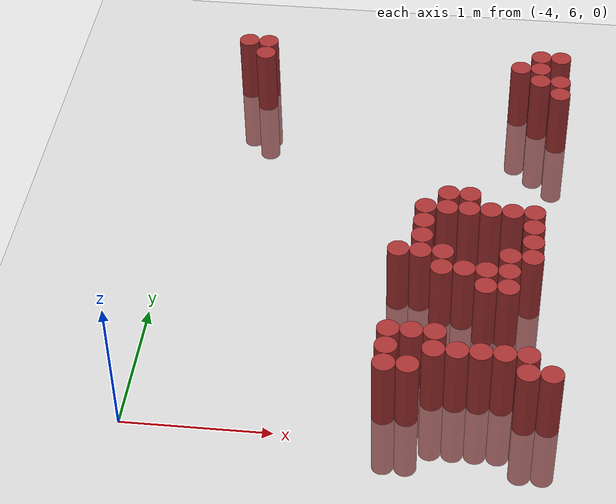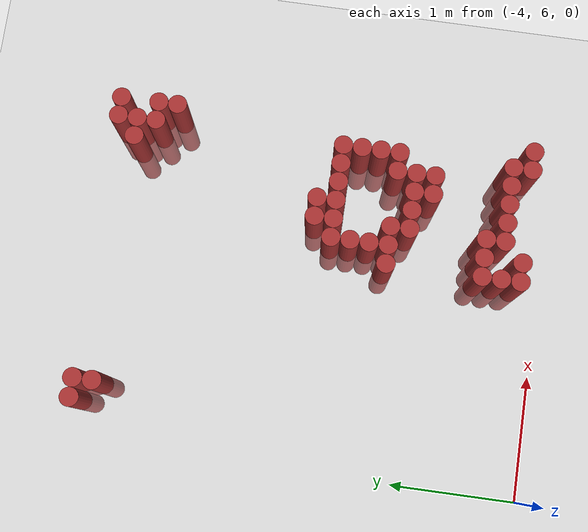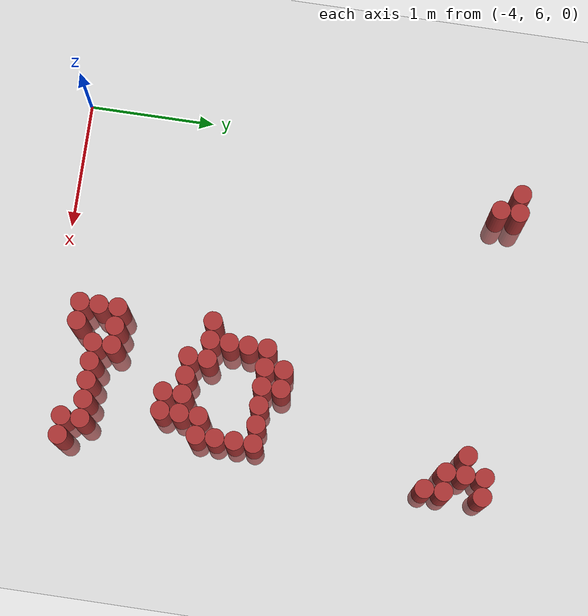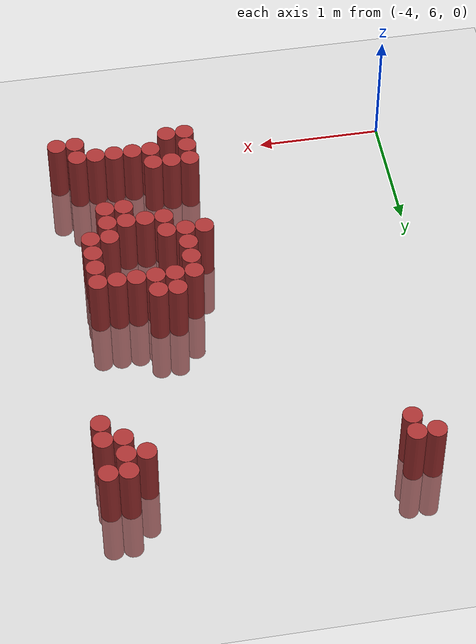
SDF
<sdf version="1.6">
 <world name="default">
  <model name="ground_plane">
   <static>1</static>
   <link name="link">
    <collision name="collision">
     <geometry><plane><normal>0 0 1</normal><size>100 100</size></plane></geometry>
     <surface><friction><ode><mu>100</mu><mu2>50</mu2></ode></friction></surface>
    </collision>
    <visual name="visual">
     <cast_shadows>0</cast_shadows>
     <geometry><plane><normal>0 0 1</normal><size>100 100</size></plane></geometry>
     <material>
      <script><uri>file://media/materials/scripts/gazebo.material</uri><name>Gazebo/Grey</name></script>
     </material>
    </visual>
   </link>
  </model>
  <model name="unit_cylinder_150">
   <static>1</static>
   <pose>-3.675000 9.525000 0.000000 0.000000 0.000000 0.000000</pose>
   <link name="link">
    <inertial>
     <mass>1</mass>
     <inertia><ixx>0.145833</ixx><ixy>0</ixy><ixz>0</ixz><iyy>0.145833</iyy><iyz>0</iyz><izz>0.125</izz></inertia>
    </inertial>
    <collision name="collision">
     <geometry><cylinder><radius>0.075000</radius><length>1</length></cylinder></geometry>
    </collision>
    <visual name="visual">
     <geometry><cylinder><radius>0.075000</radius><length>1</length></cylinder></geometry>
     <material>
      <ambient>0.648000 0.192000 0.192000 1</ambient>
      <diffuse>0.648000 0.192000 0.192000 1</diffuse>
     </material>
     <material>
      <script><name>Gazebo/Grey</name><uri>file://media/materials/scripts/gazebo.material</uri></script>
     </material>
    </visual>
   </link>
  </model>
  <model name="unit_cylinder_151">
   <static>1</static>
   <pose>-3.525000 9.375000 0.000000 0.000000 0.000000 0.000000</pose>
   <link name="link">
    <inertial>
     <mass>1</mass>
     <inertia><ixx>0.145833</ixx><ixy>0</ixy><ixz>0</ixz><iyy>0.145833</iyy><iyz>0</iyz><izz>0.125</izz></inertia>
    </inertial>
    <collision name="collision">
     <geometry><cylinder><radius>0.075000</radius><length>1</length></cylinder></geometry>
    </collision>
    <visual name="visual">
     <geometry><cylinder><radius>0.075000</radius><length>1</length></cylinder></geometry>
     <material>
      <ambient>0.648000 0.192000 0.192000 1</ambient>
      <diffuse>0.648000 0.192000 0.192000 1</diffuse>
     </material>
     <material>
      <script><name>Gazebo/Grey</name><uri>file://media/materials/scripts/gazebo.material</uri></script>
     </material>
    </visual>
   </link>
  </model>
  <model name="unit_cylinder_152">
   <static>1</static>
   <pose>-3.525000 9.525000 0.000000 0.000000 0.000000 0.000000</pose>
   <link name="link">
    <inertial>
     <mass>1</mass>
     <inertia><ixx>0.145833</ixx><ixy>0</ixy><ixz>0</ixz><iyy>0.145833</iyy><iyz>0</iyz><izz>0.125</izz></inertia>
    </inertial>
    <collision name="collision">
     <geometry><cylinder><radius>0.075000</radius><length>1</length></cylinder></geometry>
    </collision>
    <visual name="visual">
     <geometry><cylinder><radius>0.075000</radius><length>1</length></cylinder></geometry>
     <material>
      <ambient>0.648000 0.192000 0.192000 1</ambient>
      <diffuse>0.648000 0.192000 0.192000 1</diffuse>
     </material>
     <material>
      <script><name>Gazebo/Grey</name><uri>file://media/materials/scripts/gazebo.material</uri></script>
     </material>
    </visual>
   </link>
  </model>
  <model name="unit_cylinder_153">
   <static>1</static>
   <pose>-2.325000 6.225000 0.000000 0.000000 0.000000 0.000000</pose>
   <link name="link">
    <inertial>
     <mass>1</mass>
     <inertia><ixx>0.145833</ixx><ixy>0</ixy><ixz>0</ixz><iyy>0.145833</iyy><iyz>0</iyz><izz>0.125</izz></inertia>
    </inertial>
    <collision name="collision">
     <geometry><cylinder><radius>0.075000</radius><length>1</length></cylinder></geometry>
    </collision>
    <visual name="visual">
     <geometry><cylinder><radius>0.075000</radius><length>1</length></cylinder></geometry>
     <material>
      <ambient>0.648000 0.192000 0.192000 1</ambient>
      <diffuse>0.648000 0.192000 0.192000 1</diffuse>
     </material>
     <material>
      <script><name>Gazebo/Grey</name><uri>file://media/materials/scripts/gazebo.material</uri></script>
     </material>
    </visual>
   </link>
  </model>
  <model name="unit_cylinder_154">
   <static>1</static>
   <pose>-2.325000 6.375000 0.000000 0.000000 0.000000 0.000000</pose>
   <link name="link">
    <inertial>
     <mass>1</mass>
     <inertia><ixx>0.145833</ixx><ixy>0</ixy><ixz>0</ixz><iyy>0.145833</iyy><iyz>0</iyz><izz>0.125</izz></inertia>
    </inertial>
    <collision name="collision">
     <geometry><cylinder><radius>0.075000</radius><length>1</length></cylinder></geometry>
    </collision>
    <visual name="visual">
     <geometry><cylinder><radius>0.075000</radius><length>1</length></cylinder></geometry>
     <material>
      <ambient>0.648000 0.192000 0.192000 1</ambient>
      <diffuse>0.648000 0.192000 0.192000 1</diffuse>
     </material>
     <material>
      <script><name>Gazebo/Grey</name><uri>file://media/materials/scripts/gazebo.material</uri></script>
     </material>
    </visual>
   </link>
  </model>
  <model name="unit_cylinder_155">
   <static>1</static>
   <pose>-2.325000 6.525000 0.000000 0.000000 0.000000 0.000000</pose>
   <link name="link">
    <inertial>
     <mass>1</mass>
     <inertia><ixx>0.145833</ixx><ixy>0</ixy><ixz>0</ixz><iyy>0.145833</iyy><iyz>0</iyz><izz>0.125</izz></inertia>
    </inertial>
    <collision name="collision">
     <geometry><cylinder><radius>0.075000</radius><length>1</length></cylinder></geometry>
    </collision>
    <visual name="visual">
     <geometry><cylinder><radius>0.075000</radius><length>1</length></cylinder></geometry>
     <material>
      <ambient>0.648000 0.192000 0.192000 1</ambient>
      <diffuse>0.648000 0.192000 0.192000 1</diffuse>
     </material>
     <material>
      <script><name>Gazebo/Grey</name><uri>file://media/materials/scripts/gazebo.material</uri></script>
     </material>
    </visual>
   </link>
  </model>
  <model name="unit_cylinder_156">
   <static>1</static>
   <pose>-2.325000 7.275000 0.000000 0.000000 0.000000 0.000000</pose>
   <link name="link">
    <inertial>
     <mass>1</mass>
     <inertia><ixx>0.145833</ixx><ixy>0</ixy><ixz>0</ixz><iyy>0.145833</iyy><iyz>0</iyz><izz>0.125</izz></inertia>
    </inertial>
    <collision name="collision">
     <geometry><cylinder><radius>0.075000</radius><length>1</length></cylinder></geometry>
    </collision>
    <visual name="visual">
     <geometry><cylinder><radius>0.075000</radius><length>1</length></cylinder></geometry>
     <material>
      <ambient>0.648000 0.192000 0.192000 1</ambient>
      <diffuse>0.648000 0.192000 0.192000 1</diffuse>
     </material>
     <material>
      <script><name>Gazebo/Grey</name><uri>file://media/materials/scripts/gazebo.material</uri></script>
     </material>
    </visual>
   </link>
  </model>
  <model name="unit_cylinder_158">
   <static>1</static>
   <pose>-2.175000 6.225000 0.000000 0.000000 0.000000 0.000000</pose>
   <link name="link">
    <inertial>
     <mass>1</mass>
     <inertia><ixx>0.145833</ixx><ixy>0</ixy><ixz>0</ixz><iyy>0.145833</iyy><iyz>0</iyz><izz>0.125</izz></inertia>
    </inertial>
    <collision name="collision">
     <geometry><cylinder><radius>0.075000</radius><length>1</length></cylinder></geometry>
    </collision>
    <visual name="visual">
     <geometry><cylinder><radius>0.075000</radius><length>1</length></cylinder></geometry>
     <material>
      <ambient>0.648000 0.192000 0.192000 1</ambient>
      <diffuse>0.648000 0.192000 0.192000 1</diffuse>
     </material>
     <material>
      <script><name>Gazebo/Grey</name><uri>file://media/materials/scripts/gazebo.material</uri></script>
     </material>
    </visual>
   </link>
  </model>
  <model name="unit_cylinder_159">
   <static>1</static>
   <pose>-2.175000 6.525000 0.000000 0.000000 0.000000 0.000000</pose>
   <link name="link">
    <inertial>
     <mass>1</mass>
     <inertia><ixx>0.145833</ixx><ixy>0</ixy><ixz>0</ixz><iyy>0.145833</iyy><iyz>0</iyz><izz>0.125</izz></inertia>
    </inertial>
    <collision name="collision">
     <geometry><cylinder><radius>0.075000</radius><length>1</length></cylinder></geometry>
    </collision>
    <visual name="visual">
     <geometry><cylinder><radius>0.075000</radius><length>1</length></cylinder></geometry>
     <material>
      <ambient>0.648000 0.192000 0.192000 1</ambient>
      <diffuse>0.648000 0.192000 0.192000 1</diffuse>
     </material>
     <material>
      <script><name>Gazebo/Grey</name><uri>file://media/materials/scripts/gazebo.material</uri></script>
     </material>
    </visual>
   </link>
  </model>
  <model name="unit_cylinder_160">
   <static>1</static>
   <pose>-2.175000 7.275000 0.000000 0.000000 0.000000 0.000000</pose>
   <link name="link">
    <inertial>
     <mass>1</mass>
     <inertia><ixx>0.145833</ixx><ixy>0</ixy><ixz>0</ixz><iyy>0.145833</iyy><iyz>0</iyz><izz>0.125</izz></inertia>
    </inertial>
    <collision name="collision">
     <geometry><cylinder><radius>0.075000</radius><length>1</length></cylinder></geometry>
    </collision>
    <visual name="visual">
     <geometry><cylinder><radius>0.075000</radius><length>1</length></cylinder></geometry>
     <material>
      <ambient>0.648000 0.192000 0.192000 1</ambient>
      <diffuse>0.648000 0.192000 0.192000 1</diffuse>
     </material>
     <material>
      <script><name>Gazebo/Grey</name><uri>file://media/materials/scripts/gazebo.material</uri></script>
     </material>
    </visual>
   </link>
  </model>
  <model name="unit_cylinder_161">
   <static>1</static>
   <pose>-2.175000 7.425000 0.000000 0.000000 0.000000 0.000000</pose>
   <link name="link">
    <inertial>
     <mass>1</mass>
     <inertia><ixx>0.145833</ixx><ixy>0</ixy><ixz>0</ixz><iyy>0.145833</iyy><iyz>0</iyz><izz>0.125</izz></inertia>
    </inertial>
    <collision name="collision">
     <geometry><cylinder><radius>0.075000</radius><length>1</length></cylinder></geometry>
    </collision>
    <visual name="visual">
     <geometry><cylinder><radius>0.075000</radius><length>1</length></cylinder></geometry>
     <material>
      <ambient>0.648000 0.192000 0.192000 1</ambient>
      <diffuse>0.648000 0.192000 0.192000 1</diffuse>
     </material>
     <material>
      <script><name>Gazebo/Grey</name><uri>file://media/materials/scripts/gazebo.material</uri></script>
     </material>
    </visual>
   </link>
  </model>
  <model name="unit_cylinder_162">
   <static>1</static>
   <pose>-2.175000 7.575000 0.000000 0.000000 0.000000 0.000000</pose>
   <link name="link">
    <inertial>
     <mass>1</mass>
     <inertia><ixx>0.145833</ixx><ixy>0</ixy><ixz>0</ixz><iyy>0.145833</iyy><iyz>0</iyz><izz>0.125</izz></inertia>
    </inertial>
    <collision name="collision">
     <geometry><cylinder><radius>0.075000</radius><length>1</length></cylinder></geometry>
    </collision>
    <visual name="visual">
     <geometry><cylinder><radius>0.075000</radius><length>1</length></cylinder></geometry>
     <material>
      <ambient>0.648000 0.192000 0.192000 1</ambient>
      <diffuse>0.648000 0.192000 0.192000 1</diffuse>
     </material>
     <material>
      <script><name>Gazebo/Grey</name><uri>file://media/materials/scripts/gazebo.material</uri></script>
     </material>
    </visual>
   </link>
  </model>
  <model name="unit_cylinder_163">
   <static>1</static>
   <pose>-2.175000 7.725000 0.000000 0.000000 0.000000 0.000000</pose>
   <link name="link">
    <inertial>
     <mass>1</mass>
     <inertia><ixx>0.145833</ixx><ixy>0</ixy><ixz>0</ixz><iyy>0.145833</iyy><iyz>0</iyz><izz>0.125</izz></inertia>
    </inertial>
    <collision name="collision">
     <geometry><cylinder><radius>0.075000</radius><length>1</length></cylinder></geometry>
    </collision>
    <visual name="visual">
     <geometry><cylinder><radius>0.075000</radius><length>1</length></cylinder></geometry>
     <material>
      <ambient>0.648000 0.192000 0.192000 1</ambient>
      <diffuse>0.648000 0.192000 0.192000 1</diffuse>
     </material>
     <material>
      <script><name>Gazebo/Grey</name><uri>file://media/materials/scripts/gazebo.material</uri></script>
     </material>
    </visual>
   </link>
  </model>
  <model name="unit_cylinder_168">
   <static>1</static>
   <pose>-2.025000 6.375000 0.000000 0.000000 0.000000 0.000000</pose>
   <link name="link">
    <inertial>
     <mass>1</mass>
     <inertia><ixx>0.145833</ixx><ixy>0</ixy><ixz>0</ixz><iyy>0.145833</iyy><iyz>0</iyz><izz>0.125</izz></inertia>
    </inertial>
    <collision name="collision">
     <geometry><cylinder><radius>0.075000</radius><length>1</length></cylinder></geometry>
    </collision>
    <visual name="visual">
     <geometry><cylinder><radius>0.075000</radius><length>1</length></cylinder></geometry>
     <material>
      <ambient>0.648000 0.192000 0.192000 1</ambient>
      <diffuse>0.648000 0.192000 0.192000 1</diffuse>
     </material>
     <material>
      <script><name>Gazebo/Grey</name><uri>file://media/materials/scripts/gazebo.material</uri></script>
     </material>
    </visual>
   </link>
  </model>
  <model name="unit_cylinder_169">
   <static>1</static>
   <pose>-2.025000 6.525000 0.000000 0.000000 0.000000 0.000000</pose>
   <link name="link">
    <inertial>
     <mass>1</mass>
     <inertia><ixx>0.145833</ixx><ixy>0</ixy><ixz>0</ixz><iyy>0.145833</iyy><iyz>0</iyz><izz>0.125</izz></inertia>
    </inertial>
    <collision name="collision">
     <geometry><cylinder><radius>0.075000</radius><length>1</length></cylinder></geometry>
    </collision>
    <visual name="visual">
     <geometry><cylinder><radius>0.075000</radius><length>1</length></cylinder></geometry>
     <material>
      <ambient>0.648000 0.192000 0.192000 1</ambient>
      <diffuse>0.648000 0.192000 0.192000 1</diffuse>
     </material>
     <material>
      <script><name>Gazebo/Grey</name><uri>file://media/materials/scripts/gazebo.material</uri></script>
     </material>
    </visual>
   </link>
  </model>
  <model name="unit_cylinder_170">
   <static>1</static>
   <pose>-2.025000 7.125000 0.000000 0.000000 0.000000 0.000000</pose>
   <link name="link">
    <inertial>
     <mass>1</mass>
     <inertia><ixx>0.145833</ixx><ixy>0</ixy><ixz>0</ixz><iyy>0.145833</iyy><iyz>0</iyz><izz>0.125</izz></inertia>
    </inertial>
    <collision name="collision">
     <geometry><cylinder><radius>0.075000</radius><length>1</length></cylinder></geometry>
    </collision>
    <visual name="visual">
     <geometry><cylinder><radius>0.075000</radius><length>1</length></cylinder></geometry>
     <material>
      <ambient>0.648000 0.192000 0.192000 1</ambient>
      <diffuse>0.648000 0.192000 0.192000 1</diffuse>
     </material>
     <material>
      <script><name>Gazebo/Grey</name><uri>file://media/materials/scripts/gazebo.material</uri></script>
     </material>
    </visual>
   </link>
  </model>
  <model name="unit_cylinder_171">
   <static>1</static>
   <pose>-2.025000 7.275000 0.000000 0.000000 0.000000 0.000000</pose>
   <link name="link">
    <inertial>
     <mass>1</mass>
     <inertia><ixx>0.145833</ixx><ixy>0</ixy><ixz>0</ixz><iyy>0.145833</iyy><iyz>0</iyz><izz>0.125</izz></inertia>
    </inertial>
    <collision name="collision">
     <geometry><cylinder><radius>0.075000</radius><length>1</length></cylinder></geometry>
    </collision>
    <visual name="visual">
     <geometry><cylinder><radius>0.075000</radius><length>1</length></cylinder></geometry>
     <material>
      <ambient>0.648000 0.192000 0.192000 1</ambient>
      <diffuse>0.648000 0.192000 0.192000 1</diffuse>
     </material>
     <material>
      <script><name>Gazebo/Grey</name><uri>file://media/materials/scripts/gazebo.material</uri></script>
     </material>
    </visual>
   </link>
  </model>
  <model name="unit_cylinder_172">
   <static>1</static>
   <pose>-2.025000 7.725000 0.000000 0.000000 0.000000 0.000000</pose>
   <link name="link">
    <inertial>
     <mass>1</mass>
     <inertia><ixx>0.145833</ixx><ixy>0</ixy><ixz>0</ixz><iyy>0.145833</iyy><iyz>0</iyz><izz>0.125</izz></inertia>
    </inertial>
    <collision name="collision">
     <geometry><cylinder><radius>0.075000</radius><length>1</length></cylinder></geometry>
    </collision>
    <visual name="visual">
     <geometry><cylinder><radius>0.075000</radius><length>1</length></cylinder></geometry>
     <material>
      <ambient>0.648000 0.192000 0.192000 1</ambient>
      <diffuse>0.648000 0.192000 0.192000 1</diffuse>
     </material>
     <material>
      <script><name>Gazebo/Grey</name><uri>file://media/materials/scripts/gazebo.material</uri></script>
     </material>
    </visual>
   </link>
  </model>
  <model name="unit_cylinder_173">
   <static>1</static>
   <pose>-2.025000 7.875000 0.000000 0.000000 0.000000 0.000000</pose>
   <link name="link">
    <inertial>
     <mass>1</mass>
     <inertia><ixx>0.145833</ixx><ixy>0</ixy><ixz>0</ixz><iyy>0.145833</iyy><iyz>0</iyz><izz>0.125</izz></inertia>
    </inertial>
    <collision name="collision">
     <geometry><cylinder><radius>0.075000</radius><length>1</length></cylinder></geometry>
    </collision>
    <visual name="visual">
     <geometry><cylinder><radius>0.075000</radius><length>1</length></cylinder></geometry>
     <material>
      <ambient>0.648000 0.192000 0.192000 1</ambient>
      <diffuse>0.648000 0.192000 0.192000 1</diffuse>
     </material>
     <material>
      <script><name>Gazebo/Grey</name><uri>file://media/materials/scripts/gazebo.material</uri></script>
     </material>
    </visual>
   </link>
  </model>
  <model name="unit_cylinder_176">
   <static>1</static>
   <pose>-1.875000 6.375000 0.000000 0.000000 0.000000 0.000000</pose>
   <link name="link">
    <inertial>
     <mass>1</mass>
     <inertia><ixx>0.145833</ixx><ixy>0</ixy><ixz>0</ixz><iyy>0.145833</iyy><iyz>0</iyz><izz>0.125</izz></inertia>
    </inertial>
    <collision name="collision">
     <geometry><cylinder><radius>0.075000</radius><length>1</length></cylinder></geometry>
    </collision>
    <visual name="visual">
     <geometry><cylinder><radius>0.075000</radius><length>1</length></cylinder></geometry>
     <material>
      <ambient>0.648000 0.192000 0.192000 1</ambient>
      <diffuse>0.648000 0.192000 0.192000 1</diffuse>
     </material>
     <material>
      <script><name>Gazebo/Grey</name><uri>file://media/materials/scripts/gazebo.material</uri></script>
     </material>
    </visual>
   </link>
  </model>
  <model name="unit_cylinder_177">
   <static>1</static>
   <pose>-1.875000 7.125000 0.000000 0.000000 0.000000 0.000000</pose>
   <link name="link">
    <inertial>
     <mass>1</mass>
     <inertia><ixx>0.145833</ixx><ixy>0</ixy><ixz>0</ixz><iyy>0.145833</iyy><iyz>0</iyz><izz>0.125</izz></inertia>
    </inertial>
    <collision name="collision">
     <geometry><cylinder><radius>0.075000</radius><length>1</length></cylinder></geometry>
    </collision>
    <visual name="visual">
     <geometry><cylinder><radius>0.075000</radius><length>1</length></cylinder></geometry>
     <material>
      <ambient>0.648000 0.192000 0.192000 1</ambient>
      <diffuse>0.648000 0.192000 0.192000 1</diffuse>
     </material>
     <material>
      <script><name>Gazebo/Grey</name><uri>file://media/materials/scripts/gazebo.material</uri></script>
     </material>
    </visual>
   </link>
  </model>
  <model name="unit_cylinder_178">
   <static>1</static>
   <pose>-1.875000 7.725000 0.000000 0.000000 0.000000 0.000000</pose>
   <link name="link">
    <inertial>
     <mass>1</mass>
     <inertia><ixx>0.145833</ixx><ixy>0</ixy><ixz>0</ixz><iyy>0.145833</iyy><iyz>0</iyz><izz>0.125</izz></inertia>
    </inertial>
    <collision name="collision">
     <geometry><cylinder><radius>0.075000</radius><length>1</length></cylinder></geometry>
    </collision>
    <visual name="visual">
     <geometry><cylinder><radius>0.075000</radius><length>1</length></cylinder></geometry>
     <material>
      <ambient>0.648000 0.192000 0.192000 1</ambient>
      <diffuse>0.648000 0.192000 0.192000 1</diffuse>
     </material>
     <material>
      <script><name>Gazebo/Grey</name><uri>file://media/materials/scripts/gazebo.material</uri></script>
     </material>
    </visual>
   </link>
  </model>
  <model name="unit_cylinder_179">
   <static>1</static>
   <pose>-1.875000 7.875000 0.000000 0.000000 0.000000 0.000000</pose>
   <link name="link">
    <inertial>
     <mass>1</mass>
     <inertia><ixx>0.145833</ixx><ixy>0</ixy><ixz>0</ixz><iyy>0.145833</iyy><iyz>0</iyz><izz>0.125</izz></inertia>
    </inertial>
    <collision name="collision">
     <geometry><cylinder><radius>0.075000</radius><length>1</length></cylinder></geometry>
    </collision>
    <visual name="visual">
     <geometry><cylinder><radius>0.075000</radius><length>1</length></cylinder></geometry>
     <material>
      <ambient>0.648000 0.192000 0.192000 1</ambient>
      <diffuse>0.648000 0.192000 0.192000 1</diffuse>
     </material>
     <material>
      <script><name>Gazebo/Grey</name><uri>file://media/materials/scripts/gazebo.material</uri></script>
     </material>
    </visual>
   </link>
  </model>
  <model name="unit_cylinder_182">
   <static>1</static>
   <pose>-1.725000 6.375000 0.000000 0.000000 0.000000 0.000000</pose>
   <link name="link">
    <inertial>
     <mass>1</mass>
     <inertia><ixx>0.145833</ixx><ixy>0</ixy><ixz>0</ixz><iyy>0.145833</iyy><iyz>0</iyz><izz>0.125</izz></inertia>
    </inertial>
    <collision name="collision">
     <geometry><cylinder><radius>0.075000</radius><length>1</length></cylinder></geometry>
    </collision>
    <visual name="visual">
     <geometry><cylinder><radius>0.075000</radius><length>1</length></cylinder></geometry>
     <material>
      <ambient>0.648000 0.192000 0.192000 1</ambient>
      <diffuse>0.648000 0.192000 0.192000 1</diffuse>
     </material>
     <material>
      <script><name>Gazebo/Grey</name><uri>file://media/materials/scripts/gazebo.material</uri></script>
     </material>
    </visual>
   </link>
  </model>
  <model name="unit_cylinder_183">
   <static>1</static>
   <pose>-1.725000 6.975000 0.000000 0.000000 0.000000 0.000000</pose>
   <link name="link">
    <inertial>
     <mass>1</mass>
     <inertia><ixx>0.145833</ixx><ixy>0</ixy><ixz>0</ixz><iyy>0.145833</iyy><iyz>0</iyz><izz>0.125</izz></inertia>
    </inertial>
    <collision name="collision">
     <geometry><cylinder><radius>0.075000</radius><length>1</length></cylinder></geometry>
    </collision>
    <visual name="visual">
     <geometry><cylinder><radius>0.075000</radius><length>1</length></cylinder></geometry>
     <material>
      <ambient>0.648000 0.192000 0.192000 1</ambient>
      <diffuse>0.648000 0.192000 0.192000 1</diffuse>
     </material>
     <material>
      <script><name>Gazebo/Grey</name><uri>file://media/materials/scripts/gazebo.material</uri></script>
     </material>
    </visual>
   </link>
  </model>
  <model name="unit_cylinder_184">
   <static>1</static>
   <pose>-1.725000 7.125000 0.000000 0.000000 0.000000 0.000000</pose>
   <link name="link">
    <inertial>
     <mass>1</mass>
     <inertia><ixx>0.145833</ixx><ixy>0</ixy><ixz>0</ixz><iyy>0.145833</iyy><iyz>0</iyz><izz>0.125</izz></inertia>
    </inertial>
    <collision name="collision">
     <geometry><cylinder><radius>0.075000</radius><length>1</length></cylinder></geometry>
    </collision>
    <visual name="visual">
     <geometry><cylinder><radius>0.075000</radius><length>1</length></cylinder></geometry>
     <material>
      <ambient>0.648000 0.192000 0.192000 1</ambient>
      <diffuse>0.648000 0.192000 0.192000 1</diffuse>
     </material>
     <material>
      <script><name>Gazebo/Grey</name><uri>file://media/materials/scripts/gazebo.material</uri></script>
     </material>
    </visual>
   </link>
  </model>
  <model name="unit_cylinder_185">
   <static>1</static>
   <pose>-1.725000 7.725000 0.000000 0.000000 0.000000 0.000000</pose>
   <link name="link">
    <inertial>
     <mass>1</mass>
     <inertia><ixx>0.145833</ixx><ixy>0</ixy><ixz>0</ixz><iyy>0.145833</iyy><iyz>0</iyz><izz>0.125</izz></inertia>
    </inertial>
    <collision name="collision">
     <geometry><cylinder><radius>0.075000</radius><length>1</length></cylinder></geometry>
    </collision>
    <visual name="visual">
     <geometry><cylinder><radius>0.075000</radius><length>1</length></cylinder></geometry>
     <material>
      <ambient>0.648000 0.192000 0.192000 1</ambient>
      <diffuse>0.648000 0.192000 0.192000 1</diffuse>
     </material>
     <material>
      <script><name>Gazebo/Grey</name><uri>file://media/materials/scripts/gazebo.material</uri></script>
     </material>
    </visual>
   </link>
  </model>
  <model name="unit_cylinder_187">
   <static>1</static>
   <pose>-1.575000 6.375000 0.000000 0.000000 0.000000 0.000000</pose>
   <link name="link">
    <inertial>
     <mass>1</mass>
     <inertia><ixx>0.145833</ixx><ixy>0</ixy><ixz>0</ixz><iyy>0.145833</iyy><iyz>0</iyz><izz>0.125</izz></inertia>
    </inertial>
    <collision name="collision">
     <geometry><cylinder><radius>0.075000</radius><length>1</length></cylinder></geometry>
    </collision>
    <visual name="visual">
     <geometry><cylinder><radius>0.075000</radius><length>1</length></cylinder></geometry>
     <material>
      <ambient>0.648000 0.192000 0.192000 1</ambient>
      <diffuse>0.648000 0.192000 0.192000 1</diffuse>
     </material>
     <material>
      <script><name>Gazebo/Grey</name><uri>file://media/materials/scripts/gazebo.material</uri></script>
     </material>
    </visual>
   </link>
  </model>
  <model name="unit_cylinder_188">
   <static>1</static>
   <pose>-1.575000 6.975000 0.000000 0.000000 0.000000 0.000000</pose>
   <link name="link">
    <inertial>
     <mass>1</mass>
     <inertia><ixx>0.145833</ixx><ixy>0</ixy><ixz>0</ixz><iyy>0.145833</iyy><iyz>0</iyz><izz>0.125</izz></inertia>
    </inertial>
    <collision name="collision">
     <geometry><cylinder><radius>0.075000</radius><length>1</length></cylinder></geometry>
    </collision>
    <visual name="visual">
     <geometry><cylinder><radius>0.075000</radius><length>1</length></cylinder></geometry>
     <material>
      <ambient>0.648000 0.192000 0.192000 1</ambient>
      <diffuse>0.648000 0.192000 0.192000 1</diffuse>
     </material>
     <material>
      <script><name>Gazebo/Grey</name><uri>file://media/materials/scripts/gazebo.material</uri></script>
     </material>
    </visual>
   </link>
  </model>
  <model name="unit_cylinder_189">
   <static>1</static>
   <pose>-1.575000 7.125000 0.000000 0.000000 0.000000 0.000000</pose>
   <link name="link">
    <inertial>
     <mass>1</mass>
     <inertia><ixx>0.145833</ixx><ixy>0</ixy><ixz>0</ixz><iyy>0.145833</iyy><iyz>0</iyz><izz>0.125</izz></inertia>
    </inertial>
    <collision name="collision">
     <geometry><cylinder><radius>0.075000</radius><length>1</length></cylinder></geometry>
    </collision>
    <visual name="visual">
     <geometry><cylinder><radius>0.075000</radius><length>1</length></cylinder></geometry>
     <material>
      <ambient>0.648000 0.192000 0.192000 1</ambient>
      <diffuse>0.648000 0.192000 0.192000 1</diffuse>
     </material>
     <material>
      <script><name>Gazebo/Grey</name><uri>file://media/materials/scripts/gazebo.material</uri></script>
     </material>
    </visual>
   </link>
  </model>
  <model name="unit_cylinder_190">
   <static>1</static>
   <pose>-1.575000 7.275000 0.000000 0.000000 0.000000 0.000000</pose>
   <link name="link">
    <inertial>
     <mass>1</mass>
     <inertia><ixx>0.145833</ixx><ixy>0</ixy><ixz>0</ixz><iyy>0.145833</iyy><iyz>0</iyz><izz>0.125</izz></inertia>
    </inertial>
    <collision name="collision">
     <geometry><cylinder><radius>0.075000</radius><length>1</length></cylinder></geometry>
    </collision>
    <visual name="visual">
     <geometry><cylinder><radius>0.075000</radius><length>1</length></cylinder></geometry>
     <material>
      <ambient>0.648000 0.192000 0.192000 1</ambient>
      <diffuse>0.648000 0.192000 0.192000 1</diffuse>
     </material>
     <material>
      <script><name>Gazebo/Grey</name><uri>file://media/materials/scripts/gazebo.material</uri></script>
     </material>
    </visual>
   </link>
  </model>
  <model name="unit_cylinder_191">
   <static>1</static>
   <pose>-1.575000 7.725000 0.000000 0.000000 0.000000 0.000000</pose>
   <link name="link">
    <inertial>
     <mass>1</mass>
     <inertia><ixx>0.145833</ixx><ixy>0</ixy><ixz>0</ixz><iyy>0.145833</iyy><iyz>0</iyz><izz>0.125</izz></inertia>
    </inertial>
    <collision name="collision">
     <geometry><cylinder><radius>0.075000</radius><length>1</length></cylinder></geometry>
    </collision>
    <visual name="visual">
     <geometry><cylinder><radius>0.075000</radius><length>1</length></cylinder></geometry>
     <material>
      <ambient>0.648000 0.192000 0.192000 1</ambient>
      <diffuse>0.648000 0.192000 0.192000 1</diffuse>
     </material>
     <material>
      <script><name>Gazebo/Grey</name><uri>file://media/materials/scripts/gazebo.material</uri></script>
     </material>
    </visual>
   </link>
  </model>
  <model name="unit_cylinder_192">
   <static>1</static>
   <pose>-1.575000 9.375000 0.000000 0.000000 0.000000 0.000000</pose>
   <link name="link">
    <inertial>
     <mass>1</mass>
     <inertia><ixx>0.145833</ixx><ixy>0</ixy><ixz>0</ixz><iyy>0.145833</iyy><iyz>0</iyz><izz>0.125</izz></inertia>
    </inertial>
    <collision name="collision">
     <geometry><cylinder><radius>0.075000</radius><length>1</length></cylinder></geometry>
    </collision>
    <visual name="visual">
     <geometry><cylinder><radius>0.075000</radius><length>1</length></cylinder></geometry>
     <material>
      <ambient>0.648000 0.192000 0.192000 1</ambient>
      <diffuse>0.648000 0.192000 0.192000 1</diffuse>
     </material>
     <material>
      <script><name>Gazebo/Grey</name><uri>file://media/materials/scripts/gazebo.material</uri></script>
     </material>
    </visual>
   </link>
  </model>
  <model name="unit_cylinder_195">
   <static>1</static>
   <pose>-1.425000 6.225000 0.000000 0.000000 0.000000 0.000000</pose>
   <link name="link">
    <inertial>
     <mass>1</mass>
     <inertia><ixx>0.145833</ixx><ixy>0</ixy><ixz>0</ixz><iyy>0.145833</iyy><iyz>0</iyz><izz>0.125</izz></inertia>
    </inertial>
    <collision name="collision">
     <geometry><cylinder><radius>0.075000</radius><length>1</length></cylinder></geometry>
    </collision>
    <visual name="visual">
     <geometry><cylinder><radius>0.075000</radius><length>1</length></cylinder></geometry>
     <material>
      <ambient>0.648000 0.192000 0.192000 1</ambient>
      <diffuse>0.648000 0.192000 0.192000 1</diffuse>
     </material>
     <material>
      <script><name>Gazebo/Grey</name><uri>file://media/materials/scripts/gazebo.material</uri></script>
     </material>
    </visual>
   </link>
  </model>
  <model name="unit_cylinder_196">
   <static>1</static>
   <pose>-1.425000 6.375000 0.000000 0.000000 0.000000 0.000000</pose>
   <link name="link">
    <inertial>
     <mass>1</mass>
     <inertia><ixx>0.145833</ixx><ixy>0</ixy><ixz>0</ixz><iyy>0.145833</iyy><iyz>0</iyz><izz>0.125</izz></inertia>
    </inertial>
    <collision name="collision">
     <geometry><cylinder><radius>0.075000</radius><length>1</length></cylinder></geometry>
    </collision>
    <visual name="visual">
     <geometry><cylinder><radius>0.075000</radius><length>1</length></cylinder></geometry>
     <material>
      <ambient>0.648000 0.192000 0.192000 1</ambient>
      <diffuse>0.648000 0.192000 0.192000 1</diffuse>
     </material>
     <material>
      <script><name>Gazebo/Grey</name><uri>file://media/materials/scripts/gazebo.material</uri></script>
     </material>
    </visual>
   </link>
  </model>
  <model name="unit_cylinder_197">
   <static>1</static>
   <pose>-1.425000 7.275000 0.000000 0.000000 0.000000 0.000000</pose>
   <link name="link">
    <inertial>
     <mass>1</mass>
     <inertia><ixx>0.145833</ixx><ixy>0</ixy><ixz>0</ixz><iyy>0.145833</iyy><iyz>0</iyz><izz>0.125</izz></inertia>
    </inertial>
    <collision name="collision">
     <geometry><cylinder><radius>0.075000</radius><length>1</length></cylinder></geometry>
    </collision>
    <visual name="visual">
     <geometry><cylinder><radius>0.075000</radius><length>1</length></cylinder></geometry>
     <material>
      <ambient>0.648000 0.192000 0.192000 1</ambient>
      <diffuse>0.648000 0.192000 0.192000 1</diffuse>
     </material>
     <material>
      <script><name>Gazebo/Grey</name><uri>file://media/materials/scripts/gazebo.material</uri></script>
     </material>
    </visual>
   </link>
  </model>
  <model name="unit_cylinder_198">
   <static>1</static>
   <pose>-1.425000 7.425000 0.000000 0.000000 0.000000 0.000000</pose>
   <link name="link">
    <inertial>
     <mass>1</mass>
     <inertia><ixx>0.145833</ixx><ixy>0</ixy><ixz>0</ixz><iyy>0.145833</iyy><iyz>0</iyz><izz>0.125</izz></inertia>
    </inertial>
    <collision name="collision">
     <geometry><cylinder><radius>0.075000</radius><length>1</length></cylinder></geometry>
    </collision>
    <visual name="visual">
     <geometry><cylinder><radius>0.075000</radius><length>1</length></cylinder></geometry>
     <material>
      <ambient>0.648000 0.192000 0.192000 1</ambient>
      <diffuse>0.648000 0.192000 0.192000 1</diffuse>
     </material>
     <material>
      <script><name>Gazebo/Grey</name><uri>file://media/materials/scripts/gazebo.material</uri></script>
     </material>
    </visual>
   </link>
  </model>
  <model name="unit_cylinder_199">
   <static>1</static>
   <pose>-1.425000 7.575000 0.000000 0.000000 0.000000 0.000000</pose>
   <link name="link">
    <inertial>
     <mass>1</mass>
     <inertia><ixx>0.145833</ixx><ixy>0</ixy><ixz>0</ixz><iyy>0.145833</iyy><iyz>0</iyz><izz>0.125</izz></inertia>
    </inertial>
    <collision name="collision">
     <geometry><cylinder><radius>0.075000</radius><length>1</length></cylinder></geometry>
    </collision>
    <visual name="visual">
     <geometry><cylinder><radius>0.075000</radius><length>1</length></cylinder></geometry>
     <material>
      <ambient>0.648000 0.192000 0.192000 1</ambient>
      <diffuse>0.648000 0.192000 0.192000 1</diffuse>
     </material>
     <material>
      <script><name>Gazebo/Grey</name><uri>file://media/materials/scripts/gazebo.material</uri></script>
     </material>
    </visual>
   </link>
  </model>
  <model name="unit_cylinder_200">
   <static>1</static>
   <pose>-1.425000 7.725000 0.000000 0.000000 0.000000 0.000000</pose>
   <link name="link">
    <inertial>
     <mass>1</mass>
     <inertia><ixx>0.145833</ixx><ixy>0</ixy><ixz>0</ixz><iyy>0.145833</iyy><iyz>0</iyz><izz>0.125</izz></inertia>
    </inertial>
    <collision name="collision">
     <geometry><cylinder><radius>0.075000</radius><length>1</length></cylinder></geometry>
    </collision>
    <visual name="visual">
     <geometry><cylinder><radius>0.075000</radius><length>1</length></cylinder></geometry>
     <material>
      <ambient>0.648000 0.192000 0.192000 1</ambient>
      <diffuse>0.648000 0.192000 0.192000 1</diffuse>
     </material>
     <material>
      <script><name>Gazebo/Grey</name><uri>file://media/materials/scripts/gazebo.material</uri></script>
     </material>
    </visual>
   </link>
  </model>
  <model name="unit_cylinder_201">
   <static>1</static>
   <pose>-1.425000 9.225000 0.000000 0.000000 0.000000 0.000000</pose>
   <link name="link">
    <inertial>
     <mass>1</mass>
     <inertia><ixx>0.145833</ixx><ixy>0</ixy><ixz>0</ixz><iyy>0.145833</iyy><iyz>0</iyz><izz>0.125</izz></inertia>
    </inertial>
    <collision name="collision">
     <geometry><cylinder><radius>0.075000</radius><length>1</length></cylinder></geometry>
    </collision>
    <visual name="visual">
     <geometry><cylinder><radius>0.075000</radius><length>1</length></cylinder></geometry>
     <material>
      <ambient>0.648000 0.192000 0.192000 1</ambient>
      <diffuse>0.648000 0.192000 0.192000 1</diffuse>
     </material>
     <material>
      <script><name>Gazebo/Grey</name><uri>file://media/materials/scripts/gazebo.material</uri></script>
     </material>
    </visual>
   </link>
  </model>
  <model name="unit_cylinder_202">
   <static>1</static>
   <pose>-1.425000 9.375000 0.000000 0.000000 0.000000 0.000000</pose>
   <link name="link">
    <inertial>
     <mass>1</mass>
     <inertia><ixx>0.145833</ixx><ixy>0</ixy><ixz>0</ixz><iyy>0.145833</iyy><iyz>0</iyz><izz>0.125</izz></inertia>
    </inertial>
    <collision name="collision">
     <geometry><cylinder><radius>0.075000</radius><length>1</length></cylinder></geometry>
    </collision>
    <visual name="visual">
     <geometry><cylinder><radius>0.075000</radius><length>1</length></cylinder></geometry>
     <material>
      <ambient>0.648000 0.192000 0.192000 1</ambient>
      <diffuse>0.648000 0.192000 0.192000 1</diffuse>
     </material>
     <material>
      <script><name>Gazebo/Grey</name><uri>file://media/materials/scripts/gazebo.material</uri></script>
     </material>
    </visual>
   </link>
  </model>
  <model name="unit_cylinder_203">
   <static>1</static>
   <pose>-1.425000 9.525000 0.000000 0.000000 0.000000 0.000000</pose>
   <link name="link">
    <inertial>
     <mass>1</mass>
     <inertia><ixx>0.145833</ixx><ixy>0</ixy><ixz>0</ixz><iyy>0.145833</iyy><iyz>0</iyz><izz>0.125</izz></inertia>
    </inertial>
    <collision name="collision">
     <geometry><cylinder><radius>0.075000</radius><length>1</length></cylinder></geometry>
    </collision>
    <visual name="visual">
     <geometry><cylinder><radius>0.075000</radius><length>1</length></cylinder></geometry>
     <material>
      <ambient>0.648000 0.192000 0.192000 1</ambient>
      <diffuse>0.648000 0.192000 0.192000 1</diffuse>
     </material>
     <material>
      <script><name>Gazebo/Grey</name><uri>file://media/materials/scripts/gazebo.material</uri></script>
     </material>
    </visual>
   </link>
  </model>
  <model name="unit_cylinder_205">
   <static>1</static>
   <pose>-1.275000 6.225000 0.000000 0.000000 0.000000 0.000000</pose>
   <link name="link">
    <inertial>
     <mass>1</mass>
     <inertia><ixx>0.145833</ixx><ixy>0</ixy><ixz>0</ixz><iyy>0.145833</iyy><iyz>0</iyz><izz>0.125</izz></inertia>
    </inertial>
    <collision name="collision">
     <geometry><cylinder><radius>0.075000</radius><length>1</length></cylinder></geometry>
    </collision>
    <visual name="visual">
     <geometry><cylinder><radius>0.075000</radius><length>1</length></cylinder></geometry>
     <material>
      <ambient>0.648000 0.192000 0.192000 1</ambient>
      <diffuse>0.648000 0.192000 0.192000 1</diffuse>
     </material>
     <material>
      <script><name>Gazebo/Grey</name><uri>file://media/materials/scripts/gazebo.material</uri></script>
     </material>
    </visual>
   </link>
  </model>
  <model name="unit_cylinder_206">
   <static>1</static>
   <pose>-1.275000 9.075000 0.000000 0.000000 0.000000 0.000000</pose>
   <link name="link">
    <inertial>
     <mass>1</mass>
     <inertia><ixx>0.145833</ixx><ixy>0</ixy><ixz>0</ixz><iyy>0.145833</iyy><iyz>0</iyz><izz>0.125</izz></inertia>
    </inertial>
    <collision name="collision">
     <geometry><cylinder><radius>0.075000</radius><length>1</length></cylinder></geometry>
    </collision>
    <visual name="visual">
     <geometry><cylinder><radius>0.075000</radius><length>1</length></cylinder></geometry>
     <material>
      <ambient>0.648000 0.192000 0.192000 1</ambient>
      <diffuse>0.648000 0.192000 0.192000 1</diffuse>
     </material>
     <material>
      <script><name>Gazebo/Grey</name><uri>file://media/materials/scripts/gazebo.material</uri></script>
     </material>
    </visual>
   </link>
  </model>
  <model name="unit_cylinder_207">
   <static>1</static>
   <pose>-1.275000 9.225000 0.000000 0.000000 0.000000 0.000000</pose>
   <link name="link">
    <inertial>
     <mass>1</mass>
     <inertia><ixx>0.145833</ixx><ixy>0</ixy><ixz>0</ixz><iyy>0.145833</iyy><iyz>0</iyz><izz>0.125</izz></inertia>
    </inertial>
    <collision name="collision">
     <geometry><cylinder><radius>0.075000</radius><length>1</length></cylinder></geometry>
    </collision>
    <visual name="visual">
     <geometry><cylinder><radius>0.075000</radius><length>1</length></cylinder></geometry>
     <material>
      <ambient>0.648000 0.192000 0.192000 1</ambient>
      <diffuse>0.648000 0.192000 0.192000 1</diffuse>
     </material>
     <material>
      <script><name>Gazebo/Grey</name><uri>file://media/materials/scripts/gazebo.material</uri></script>
     </material>
    </visual>
   </link>
  </model>
  <model name="unit_cylinder_208">
   <static>1</static>
   <pose>-1.275000 9.525000 0.000000 0.000000 0.000000 0.000000</pose>
   <link name="link">
    <inertial>
     <mass>1</mass>
     <inertia><ixx>0.145833</ixx><ixy>0</ixy><ixz>0</ixz><iyy>0.145833</iyy><iyz>0</iyz><izz>0.125</izz></inertia>
    </inertial>
    <collision name="collision">
     <geometry><cylinder><radius>0.075000</radius><length>1</length></cylinder></geometry>
    </collision>
    <visual name="visual">
     <geometry><cylinder><radius>0.075000</radius><length>1</length></cylinder></geometry>
     <material>
      <ambient>0.648000 0.192000 0.192000 1</ambient>
      <diffuse>0.648000 0.192000 0.192000 1</diffuse>
     </material>
     <material>
      <script><name>Gazebo/Grey</name><uri>file://media/materials/scripts/gazebo.material</uri></script>
     </material>
    </visual>
   </link>
  </model>
 </world>
</sdf>
